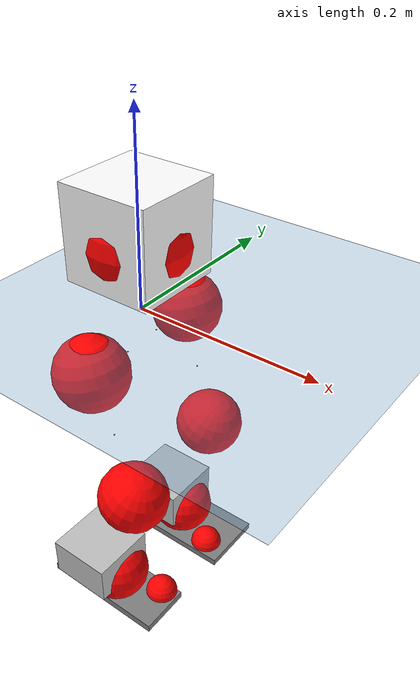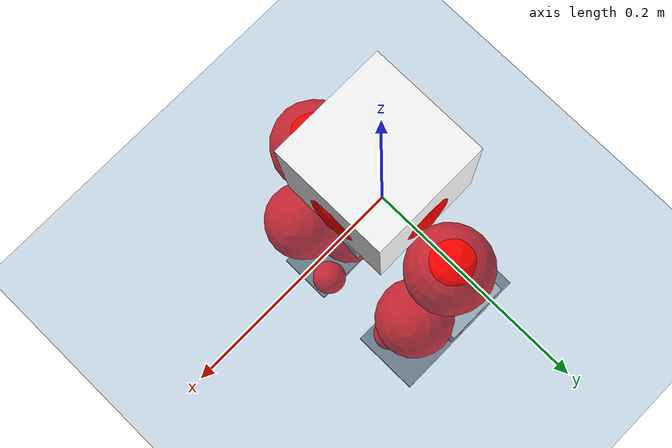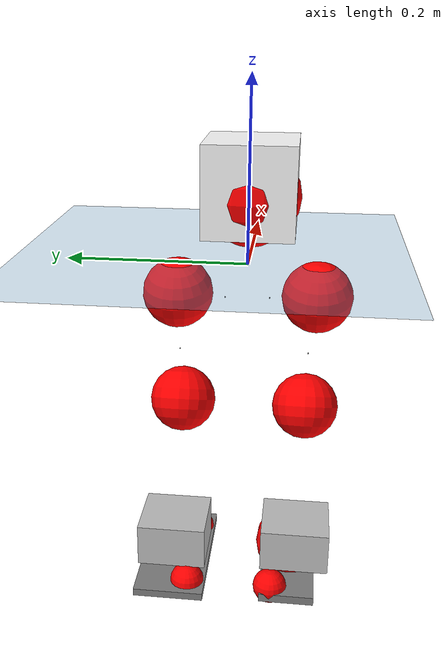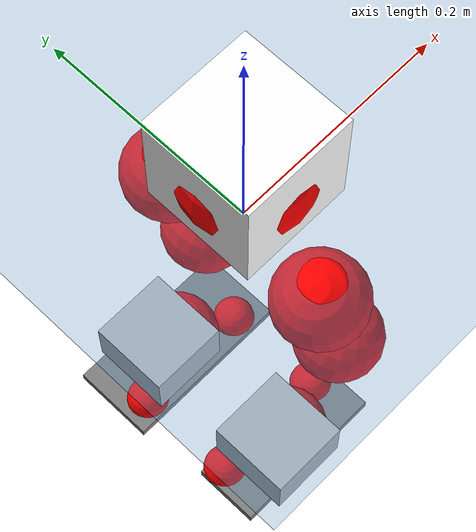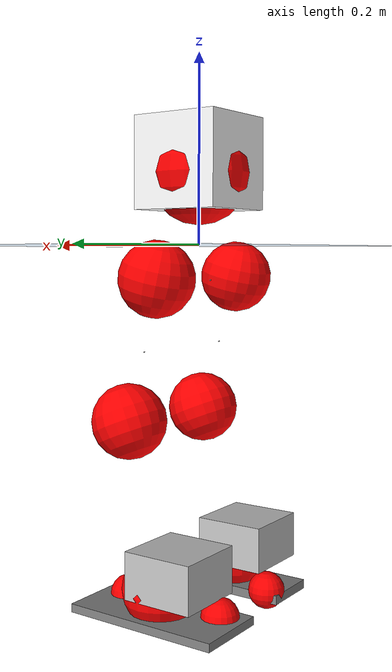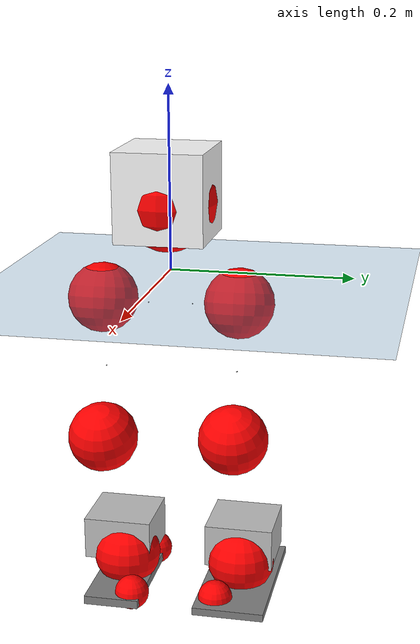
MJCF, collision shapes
<mujoco model="pi_12dof_release_v1">
  <compiler angle="radian" assetdir="assets" balanceinertia="true" inertiafromgeom="false"/>

  <option timestep="0.005" density="1.2" viscosity="2e-05"/>

  <size nkey="1"/>

  <visual>
    <quality shadowsize="8192"/>
    <map shadowclip="0.5"/>
  </visual>

  <default>
    <default class="/">
      <joint armature="0.01" damping="0.01" frictionloss="0.01"/>
      <geom contype="0" conaffinity="0" group="1" solref="-1000 -80"/>
      <site size="0.01 0.005 0.005" group="5"/>
      <general forcelimited="true" biastype="affine" gainprm="20" biasprm="0 -20 -0.5"/>
      <default class="foot">
        <geom size="0.0845 0.036 0.005" type="box" condim="6" group="4" priority="1" friction="0.9 0.2 0.2" solimp="0.015 1 0.005"/>
      </default>
      <default class="reward_collision_sphere">
        <geom group="5" rgba="1 0 0 1"/>
      </default>
    </default>
  </default>

  <asset>
    <texture type="skybox" colorspace="auto" name="//unnamed_texture_0" builtin="gradient" rgb1="0.95 0.95 0.95" rgb2="0.95 0.95 0.95" width="100" height="600"/>
    <texture type="2d" colorspace="auto" name="texplane" builtin="checker" rgb1="0.345 0.575 0.748" rgb2="0.345 0.575 0.748" markrgb="1 1 1" width="512" height="512"/>
    <material name="MatPlane" class="/" texture="texplane" texuniform="true" texrepeat="2 2" specular="0.9"/>
    <mesh name="baselink_1" class="/" file="baselink_1.STL"/>
    <mesh name="r_hip_pitch_link" class="/" file="r_hip_pitch_link.STL"/>
    <mesh name="r_hip_roll_link" class="/" file="r_hip_roll_link.STL"/>
    <mesh name="r_thigh_link" class="/" file="r_thigh_link.STL"/>
    <mesh name="r_calf_link" class="/" file="r_calf_link.STL"/>
    <mesh name="r_ankle_pitch_link" class="/" file="r_ankle_pitch_link.STL"/>
    <mesh name="r_ankle_roll_link" class="/" file="r_ankle_roll_link.STL"/>
    <mesh name="l_hip_pitch_link" class="/" file="l_hip_pitch_link.STL"/>
    <mesh name="l_hip_roll_link" class="/" file="l_hip_roll_link.STL"/>
    <mesh name="l_thigh_link" class="/" file="l_thigh_link.STL"/>
    <mesh name="l_calf_link" class="/" file="l_calf_link.STL"/>
    <mesh name="l_ankle_pitch_link" class="/" file="l_ankle_pitch_link.STL"/>
    <mesh name="l_ankle_roll_link" class="/" file="l_ankle_roll_link.STL"/>
  </asset>

  <worldbody>
    <geom name="floor" class="/" size="100 100 0.125" type="plane" group="0" material="MatPlane"/>
    <light name="toplight_shadow" class="/" pos="0 0 5" dir="0.0990148 0.0990148 -0.990148" type="directional" ambient="0.04 0.04 0.04" diffuse="0.55 0.55 0.55" specular="0.12 0.12 0.12"/>
    <light name="toplight_fill" class="/" pos="0 0 5" dir="0.0990148 0.0990148 -0.990148" type="directional" castshadow="false" ambient="0.04 0.04 0.04" diffuse="0.3 0.3 0.3" specular="0.08 0.08 0.08"/>
    <body name="trunk" pos="0.000921466 -0.00174324 -0.00259351" quat="1 0.000455191 0.000704172 -0.000169892">
      <inertial pos="-7.09017e-05 0.00128644 0.0460929" quat="0.689293 0.00408804 0.00323403 0.724464" mass="2.05625" diaginertia="0.00435606 0.00811716 0.00691744"/>
      <joint name="//unnamed_joint_0" type="free"/>
      <geom name="//unnamed_geom_1" class="/" type="mesh" density="0" rgba="1 1 1 1" mesh="baselink_1"/>
      <geom name="//unnamed_geom_2" class="/" size="0.0487123 0.0487123 0.0487123" pos="0 0 0.0881451" type="box" rgba="1 1 1 1"/>
      <geom name="//unnamed_geom_3" class="reward_collision_sphere" size="0.0535835" pos="0 0 0.077127"/>
      <site name="imu" class="/" pos="-0.00177469 -0.00226393 -0.00230642" size="0.00974246"/>
      <camera name="track" class="/" pos="0 -1.95353 0" quat="0.707107 0.707107 0 0" mode="trackcom"/>
      <camera name="ego_camera" class="/" pos="0.0633118 0 0.198326" quat="-0.5 -0.5 0.5 0.5"/>
      <body name="r_hip_pitch_link" pos="0.00107846 -0.0233494 -0.0351188" quat="0.992212 5.41915e-06 -0.124561 -0.000394617">
        <inertial pos="0.000384471 -0.0548457 -0.000296488" quat="-0.0323906 0.704271 -0.0309576 0.708515" mass="0.346213" diaginertia="4.78206e-05 8.62988e-05 0.000139195"/>
        <joint name="r_hip_pitch_joint" class="/" pos="0 0 0" axis="0.00466453 -0.999952 -0.0086338" stiffness="0.0117012" range="-1.70722 1.29442" armature="0.00978263" damping="0.0045099" frictionloss="0.00926444"/>
        <geom name="//unnamed_geom_4" class="/" type="mesh" density="0" rgba="0.75294 0.75294 0.75294 1" mesh="r_hip_pitch_link"/>
        <geom name="//unnamed_geom_5" class="/" size="0.000487123 0.000487123 0.000487123" type="box" rgba="0.75294 0.75294 0.75294 1"/>
        <body name="r_hip_roll_link" pos="0.00040229 -0.0518518 0.00302438" quat="0.999999 -0.0010101 3.96483e-05 0.00038838">
          <inertial pos="0.000833605 -0.00364382 -0.071122" quat="0.707702 -0.0658184 -0.0850111 0.698283" mass="0.367001" diaginertia="0.000142409 0.000240233 0.000207119"/>
          <joint name="r_hip_roll_joint" class="/" pos="0 0 0" axis="-0.999927 0.0067377 -0.0100027" range="-0.12461 0.515023" armature="0.0101629" damping="0.0107746" frictionloss="0.00959349"/>
          <geom name="//unnamed_geom_6" class="/" type="mesh" density="0" rgba="0.75294 0.75294 0.75294 1" mesh="r_hip_roll_link"/>
          <geom name="//unnamed_geom_7" class="/" size="0.000487123 0.000487123 0.000487123" type="box" rgba="0.75294 0.75294 0.75294 1"/>
          <geom name="//unnamed_geom_8" class="reward_collision_sphere" size="0.0389698"/>
          <body name="r_thigh_link" pos="-0.000895573 0.00697882 -0.0756822" quat="1 0.000289487 0.000298339 0.000173948">
            <inertial pos="0.000858321 -0.000471277 -0.0531186" quat="0.746134 0.665789 -0.00135654 0.00275467" mass="0.105051" diaginertia="5.25187e-05 8.11957e-05 9.1322e-05"/>
            <joint name="r_thigh_joint" class="/" pos="0 0 0" axis="-0.00146957 -0.000593683 -0.999999" stiffness="0.00134075" range="-0.270659 0.623231" armature="0.00993167" damping="0.0164341" frictionloss="0.00908068"/>
            <geom name="//unnamed_geom_9" class="/" type="mesh" density="0" rgba="0.75294 0.75294 0.75294 1" mesh="r_thigh_link"/>
            <geom name="//unnamed_geom_10" class="/" size="0.000487123 0.000487123 0.000487123" type="box" rgba="0.75294 0.75294 0.75294 1"/>
            <body name="r_calf_link" pos="0.00225344 0.000345909 -0.0795911" quat="0.947402 -0.000110801 0.320044 0.000605389">
              <inertial pos="-0.00251345 0.00207625 -0.0791971" quat="0.999974 -0.0030872 -0.0020992 0.00616964" mass="0.718088" diaginertia="0.00146413 0.00311087 0.000289496"/>
              <joint name="r_calf_joint" class="/" pos="0 0 0" axis="0.00936183 -0.999955 -0.00180796" range="-1.70001 0.618024" armature="0.00977331" damping="0" frictionloss="0.00941472"/>
              <geom name="//unnamed_geom_11" class="/" type="mesh" density="0" rgba="0.75294 0.75294 0.75294 1" mesh="r_calf_link"/>
              <geom name="//unnamed_geom_12" class="/" size="0.000487123 0.000487123 0.000487123" type="box" rgba="0.75294 0.75294 0.75294 1"/>
              <geom name="//unnamed_geom_13" class="reward_collision_sphere" size="0.0389698"/>
              <body name="r_ankle_pitch_link" pos="-0.00287263 0.00506855 -0.153881" quat="0.980053 -6.25546e-05 -0.198735 7.37663e-05">
                <inertial pos="0.00629722 0.00160588 -0.00111126" quat="0.0142092 0.70434 0.00279056 0.709715" mass="0.166945" diaginertia="0.000128365 0.000195866 0.00019323"/>
                <joint name="r_ankle_pitch_joint" class="/" pos="0 0 0" axis="-0.00792744 -0.999942 -0.00731379" range="-1.33162 0.518852" armature="0.00983714" damping="0.00965168" frictionloss="0.0095826"/>
                <geom name="//unnamed_geom_14" class="/" type="mesh" density="0" rgba="0.75294 0.75294 0.75294 1" mesh="r_ankle_pitch_link"/>
                <geom name="//unnamed_geom_15" class="/" size="0.0379956 0.0389698 0.0243561" type="box" rgba="0.75294 0.75294 0.75294 1"/>
                <body name="r_ankle_roll_link" pos="0.0609125 0.00704317 -0.000526777" quat="1 0.000488206 -0.000504982 0.000362241">
                  <inertial pos="-0.0223643 0.0020708 -0.0160968" quat="0.567403 0.419713 0.436805 0.55776" mass="0.468891" diaginertia="0.000457007 0.000910887 0.000436754"/>
                  <joint name="r_ankle_roll_joint" class="/" pos="0 0 0" axis="-0.999892 0.0139834 -0.00453959" range="-0.193408 0.166359" armature="0.0097145" damping="0.0161049" frictionloss="0.0110144"/>
                  <geom name="//unnamed_geom_16" class="/" type="mesh" density="0" rgba="0.75294 0.75294 0.75294 1" mesh="r_ankle_roll_link"/>
                  <geom name="//unnamed_geom_17" class="/" type="mesh" rgba="0.75294 0.75294 0.75294 1" mesh="r_ankle_roll_link"/>
                  <geom name="right_foot" class="foot" size="0.0768209 0.0313261 0.0048301" pos="-0.043052 0 -0.0484798"/>
                  <geom name="//unnamed_geom_19" class="reward_collision_sphere" size="0.0389698" pos="-0.0422078 0 -0.0220363"/>
                  <geom name="//unnamed_geom_20" class="reward_collision_sphere" size="0.0194849" pos="0.0126624 0.0195353 -0.0440725"/>
                  <geom name="//unnamed_geom_21" class="reward_collision_sphere" size="0.0194849" pos="-0.101299 0.0195353 -0.0440725"/>
                  <site name="right_foot" class="foot" pos="-0.043052 0 -0.0484798" size="0.00974246"/>
                </body>
              </body>
            </body>
          </body>
        </body>
      </body>
      <body name="l_hip_pitch_link" pos="-0.00213922 0.0256841 -0.0353098" quat="0.992228 9.27271e-05 -0.124432 0.000375471">
        <inertial pos="0.00272617 0.0502385 0.00207899" quat="-0.0341907 0.70874 0.0207178 0.704336" mass="0.357777" diaginertia="5.1956e-05 8.73583e-05 0.00016251"/>
        <joint name="l_hip_pitch_joint" class="/" pos="0 0 0" axis="-0.00885523 0.99995 0.00472745" range="-1.23026 1.7534" armature="0.010074" damping="0.00953481" frictionloss="0.0100905"/>
        <geom name="//unnamed_geom_22" class="/" type="mesh" density="0" rgba="0.75294 0.75294 0.75294 1" mesh="l_hip_pitch_link"/>
        <geom name="//unnamed_geom_23" class="/" size="0.000487123 0.000487123 0.000487123" type="box" rgba="0.75294 0.75294 0.75294 1"/>
        <body name="l_hip_roll_link" pos="0.0011708 0.052393 0.00342044" quat="1 -0.000498482 4.3371e-05 -8.90916e-05">
          <inertial pos="0.00176358 -0.0024341 -0.0651778" quat="0.699165 -0.0745622 -0.0830073 0.7062" mass="0.364912" diaginertia="0.000137954 0.000252783 0.000207021"/>
          <joint name="l_hip_roll_joint" class="/" pos="0 0 0" axis="-0.99998 0.00516203 0.00361941" stiffness="0.0106745" range="-0.483716 0.159354" armature="0.00887898" damping="0" frictionloss="0.00859897"/>
          <geom name="//unnamed_geom_24" class="/" type="mesh" density="0" rgba="0.75294 0.75294 0.75294 1" mesh="l_hip_roll_link"/>
          <geom name="//unnamed_geom_25" class="/" size="0.000487123 0.000487123 0.000487123" type="box" rgba="0.75294 0.75294 0.75294 1"/>
          <geom name="//unnamed_geom_26" class="reward_collision_sphere" size="0.0389698"/>
          <body name="l_thigh_link" pos="-0.00307606 0.000176114 -0.0750003" quat="0.999999 -0.00103046 -0.000292083 0.000530738">
            <inertial pos="-0.000693408 -0.000737741 -0.0540104" quat="0.674899 0.737909 -0.00122621 0.000464732" mass="0.102612" diaginertia="5.35418e-05 8.42732e-05 9.46208e-05"/>
            <joint name="l_thigh_joint" class="/" pos="0 0 0" axis="5.02573e-05 -0.00040891 -1" stiffness="0.00583367" range="-0.553282 0.334836" armature="0.00845791" damping="0" frictionloss="0.0110327"/>
            <geom name="//unnamed_geom_27" class="/" type="mesh" density="0" rgba="0.75294 0.75294 0.75294 1" mesh="l_thigh_link"/>
            <geom name="//unnamed_geom_28" class="/" size="0.000487123 0.000487123 0.000487123" type="box" rgba="0.75294 0.75294 0.75294 1"/>
            <body name="l_calf_link" pos="0.00114583 -0.000122824 -0.0751569" quat="0.947629 0.000628919 0.31937 0.00107117">
              <inertial pos="0.000396581 6.51034e-05 -0.0808731" quat="0.999955 0.0046535 0.000575936 0.00829537" mass="0.724384" diaginertia="0.00145758 0.00310917 0.000265282"/>
              <joint name="l_calf_joint" class="/" pos="0 0 0" axis="0.00988395 0.999948 -0.00257386" stiffness="0.01017" range="-0.647118 1.60278" armature="0.0084773" damping="0.00371169" frictionloss="0.0109489"/>
              <geom name="//unnamed_geom_29" class="/" type="mesh" density="0" rgba="0.75294 0.75294 0.75294 1" mesh="l_calf_link"/>
              <geom name="//unnamed_geom_30" class="/" size="0.000487123 0.000487123 0.000487123" type="box" rgba="0.75294 0.75294 0.75294 1"/>
              <geom name="//unnamed_geom_31" class="reward_collision_sphere" size="0.0389698"/>
              <body name="l_ankle_pitch_link" pos="-0.00144554 0.00135492 -0.158132" quat="0.979984 -0.00065103 -0.199074 -0.00101137">
                <inertial pos="0.0038725 -0.00207771 -0.00140755" quat="0.00104327 0.707792 -0.00279223 0.706414" mass="0.172309" diaginertia="0.000134488 0.000196036 0.00019512"/>
                <joint name="l_ankle_pitch_joint" class="/" pos="0 0 0" axis="0.00087632 1 0.000448585" range="-0.539332 1.32057" armature="0.00992387" damping="0.00728888" frictionloss="0.0087489"/>
                <geom name="//unnamed_geom_32" class="/" type="mesh" density="0" rgba="0.75294 0.75294 0.75294 1" mesh="l_ankle_pitch_link"/>
                <geom name="//unnamed_geom_33" class="/" size="0.0379956 0.0389698 0.0243561" type="box" rgba="0.75294 0.75294 0.75294 1"/>
                <body name="l_ankle_roll_link" pos="0.0647952 0.000797804 0.00126064" quat="1 4.06011e-05 -6.04984e-05 -3.92346e-05">
                  <inertial pos="-0.0232786 -0.000144253 -0.0143052" quat="0.559412 0.432786 0.433362 0.558527" mass="0.492968" diaginertia="0.000503139 0.000952153 0.000461058"/>
                  <joint name="l_ankle_roll_joint" class="/" pos="0 0 0" axis="-0.999996 0.000666653 -0.00267949" range="-0.187538 0.136978" armature="0.00920084" damping="0.00901993" frictionloss="0.00841694"/>
                  <geom name="//unnamed_geom_34" class="/" type="mesh" density="0" rgba="0.75294 0.75294 0.75294 1" mesh="l_ankle_roll_link"/>
                  <geom name="//unnamed_geom_35" class="/" type="mesh" rgba="0.75294 0.75294 0.75294 1" mesh="l_ankle_roll_link"/>
                  <geom name="left_foot" class="foot" size="0.0845389 0.0401798 0.00431108" pos="-0.043052 0 -0.0484798"/>
                  <geom name="//unnamed_geom_37" class="reward_collision_sphere" size="0.0389698" pos="-0.0422078 0 -0.0220363"/>
                  <geom name="//unnamed_geom_38" class="reward_collision_sphere" size="0.0194849" pos="0.0126624 -0.0195353 -0.0440725"/>
                  <geom name="//unnamed_geom_39" class="reward_collision_sphere" size="0.0194849" pos="-0.101299 -0.0195353 -0.0440725"/>
                  <site name="left_foot" class="foot" pos="-0.043052 0 -0.0484798" size="0.00974246"/>
                </body>
              </body>
            </body>
          </body>
        </body>
      </body>
    </body>
  </worldbody>

  <contact>
    <pair class="/" geom1="floor" geom2="right_foot" name="//unnamed_contact_1"/>
    <pair class="/" geom1="floor" geom2="left_foot" name="//unnamed_contact_0"/>
  </contact>

  <actuator>
    <general name="r_hip_pitch_joint" class="/" joint="r_hip_pitch_joint" forcerange="-18.4524 18.4524" gainprm="18.2815" biasprm="0 -18.2815 -0.544349"/>
    <general name="r_hip_roll_joint" class="/" joint="r_hip_roll_joint" forcerange="-18.9379 18.9379" gainprm="18.2815" biasprm="0 -18.2815 -0.544349"/>
    <general name="r_thigh_joint" class="/" joint="r_thigh_joint" forcerange="-20.6359 20.6359" gainprm="18.2815" biasprm="0 -18.2815 -0.544349"/>
    <general name="r_calf_joint" class="/" joint="r_calf_joint" forcerange="-20.2669 20.2669" gainprm="18.2815" biasprm="0 -18.2815 -0.544349"/>
    <general name="r_ankle_pitch_joint" class="/" joint="r_ankle_pitch_joint" forcerange="-20.1871 20.1871" gainprm="18.2815" biasprm="0 -18.2815 -0.544349"/>
    <general name="r_ankle_roll_joint" class="/" joint="r_ankle_roll_joint" forcerange="-21.1802 21.1802" gainprm="18.2815" biasprm="0 -18.2815 -0.544349"/>
    <general name="l_hip_pitch_joint" class="/" joint="l_hip_pitch_joint" forcerange="-22.6038 22.6038" gainprm="18.2815" biasprm="0 -18.2815 -0.544349"/>
    <general name="l_hip_roll_joint" class="/" joint="l_hip_roll_joint" forcerange="-20.6277 20.6277" gainprm="18.2815" biasprm="0 -18.2815 -0.544349"/>
    <general name="l_thigh_joint" class="/" joint="l_thigh_joint" forcerange="-19.9427 19.9427" gainprm="18.2815" biasprm="0 -18.2815 -0.544349"/>
    <general name="l_calf_joint" class="/" joint="l_calf_joint" forcerange="-18.527 18.527" gainprm="18.2815" biasprm="0 -18.2815 -0.544349"/>
    <general name="l_ankle_pitch_joint" class="/" joint="l_ankle_pitch_joint" forcerange="-21.0549 21.0549" gainprm="18.2815" biasprm="0 -18.2815 -0.544349"/>
    <general name="l_ankle_roll_joint" class="/" joint="l_ankle_roll_joint" forcerange="-19.4523 19.4523" gainprm="18.2815" biasprm="0 -18.2815 -0.544349"/>
  </actuator>

  <sensor>
    <gyro site="imu" name="imu_angular_velocity"/>
    <velocimeter site="imu" name="imu_linear_velocity"/>
    <framelinvel objtype="site" objname="left_foot" name="left_foot_global_linear_velocity"/>
    <framelinvel objtype="site" objname="right_foot" name="right_foot_global_linear_velocity"/>
  </sensor>

  <keyframe>
    <key name="home" qpos="0 0 0.291 1 0 0 0 0.4 0 0 -0.8 0.4 0 -0.4 0 0 0.8 -0.4 0"/>
  </keyframe>
</mujoco>
